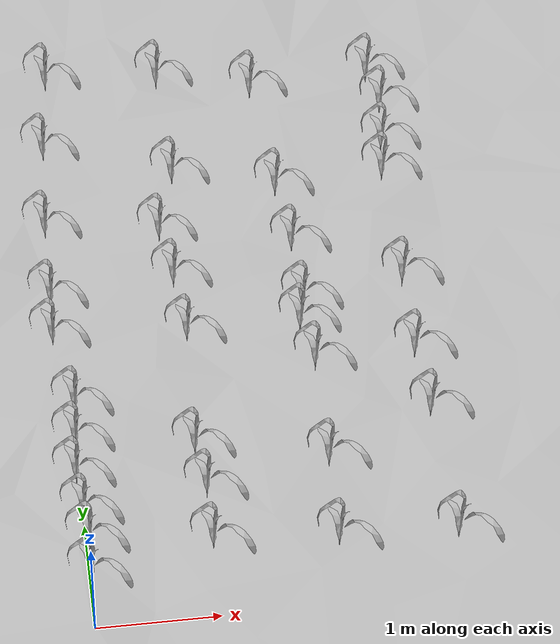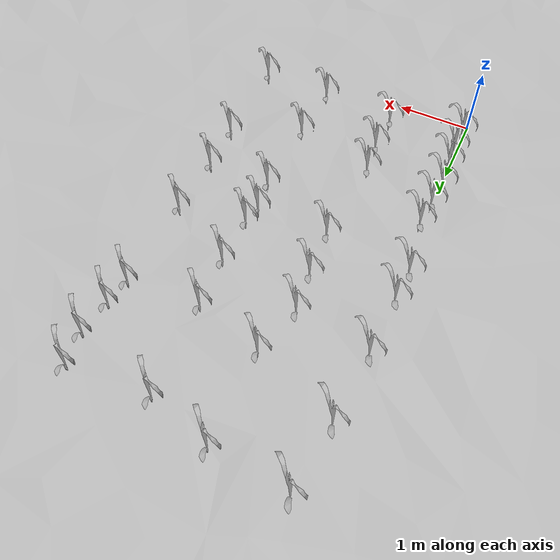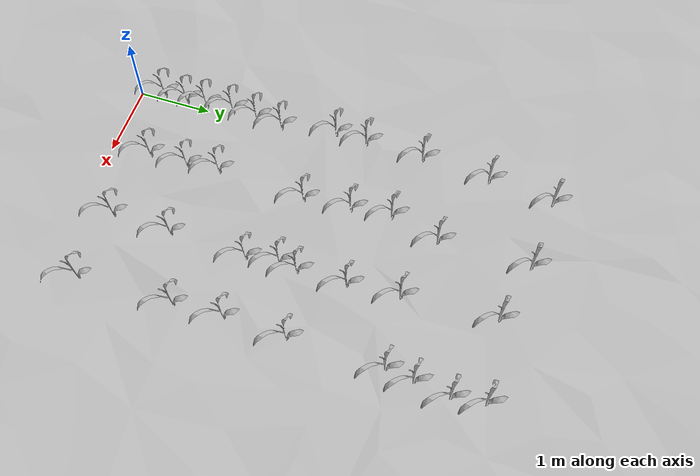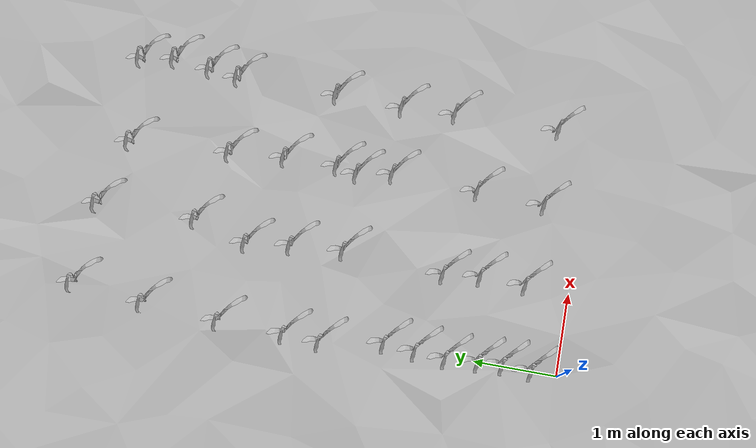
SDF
<sdf version="1.7">
 <world name="default">
  <light name="sun" type="directional">
   <pose>0 0 10 0 -0 0</pose>
   <diffuse>0.8 0.8 0.8 1</diffuse>
   <specular>0.2 0.2 0.2 1</specular>
   <attenuation>
    <range>1000</range>
    <constant>0.9</constant>
    <linear>0.01</linear>
    <quadratic>0.001</quadratic>
   </attenuation>
   <direction>-0.5 0.1 -0.9</direction>
   <spot><inner_angle>0</inner_angle><outer_angle>0</outer_angle><falloff>0</falloff></spot>
  </light>
  <model name="ground_plane">
   <static>1</static>
   <link name="link">
    <collision name="collision">
     <geometry><plane><normal>0 0 1</normal><size>100 100</size></plane></geometry>
     <surface><friction><ode><mu>100</mu><mu2>50</mu2></ode></friction></surface>
    </collision>
    <visual name="visual">
     <cast_shadows>0</cast_shadows>
     <geometry><plane><normal>0 0 1</normal><size>100 100</size></plane></geometry>
     <material>
      <script><uri>file://media/materials/scripts/gazebo.material</uri><name>Gazebo/Grey</name></script>
     </material>
    </visual>
   </link>
  </model>
  <gravity>0 0 -9.8</gravity>
  <magnetic_field>6e-06 2.3e-05 -4.2e-05</magnetic_field>
  <atmosphere type="adiabatic"/>
  <physics type="ode">
   <max_step_size>0.001</max_step_size>
   <real_time_factor>1</real_time_factor>
   <real_time_update_rate>1000</real_time_update_rate>
  </physics>
  <scene><ambient>0.4 0.4 0.4 1</ambient><background>0.7 0.7 0.7 1</background><shadows>1</shadows></scene>
  <audio><device>default</device></audio>
  <spherical_coordinates>
   <surface_model>EARTH_WGS84</surface_model>
   <latitude_deg>0</latitude_deg>
   <longitude_deg>0</longitude_deg>
   <elevation>0</elevation>
   <heading_deg>0</heading_deg>
  </spherical_coordinates>
  <model name="maize_01">
   <static>1</static>
   <pose>0.009623 0.379944 0.05 0 -0 0</pose>
   <link name="maize_01_link">
    <inertial>
     <pose>0 0 0.01 0 -0 0</pose>
     <mass>0.3</mass>
     <inertia>
      <ixx>0.00334167</ixx>
      <ixy>0</ixy>
      <ixz>0</ixz>
      <iyy>0.00334167</iyy>
      <iyz>0</iyz>
      <izz>1.66667e-05</izz>
     </inertia>
     <pose>0 0 0.1 0 -0 0</pose>
    </inertial>
    <collision name="collision">
     <pose>0 0 0.2 0 -0 0</pose>
     <geometry><box><size>0.02 0.02 0.4</size></box></geometry>
     <surface><friction><ode><mu>10</mu><mu2>10</mu2></ode></friction></surface>
    </collision>
    <visual name="visual">
     <geometry>
      <mesh><uri>model://maize_01/meshes/maize_01.dae</uri><scale>0.683166 0.683166 0.683166</scale></mesh>
     </geometry>
    </visual>
   </link>
  </model>
  <model name="maize_01_clone">
   <static>1</static>
   <pose>0.020238 0.71727 0.05 0 -0 0</pose>
   <link name="maize_01_link">
    <inertial>
     <pose>0 0 0.01 0 -0 0</pose>
     <mass>0.3</mass>
     <inertia>
      <ixx>0.00334167</ixx>
      <ixy>0</ixy>
      <ixz>0</ixz>
      <iyy>0.00334167</iyy>
      <iyz>0</iyz>
      <izz>1.66667e-05</izz>
     </inertia>
     <pose>0 0 0.1 0 -0 0</pose>
    </inertial>
    <collision name="collision">
     <pose>0 0 0.2 0 -0 0</pose>
     <geometry><box><size>0.02 0.02 0.4</size></box></geometry>
     <surface><friction><ode><mu>10</mu><mu2>10</mu2></ode></friction></surface>
    </collision>
    <visual name="visual">
     <geometry>
      <mesh><uri>model://maize_01/meshes/maize_01.dae</uri><scale>0.683166 0.683166 0.683166</scale></mesh>
     </geometry>
    </visual>
   </link>
  </model>
  <model name="maize_01_clone_0">
   <static>1</static>
   <pose>0 1 0.05 0 -0 0</pose>
   <link name="maize_01_link">
    <inertial>
     <pose>0 0 0.01 0 -0 0</pose>
     <mass>0.3</mass>
     <inertia>
      <ixx>0.00334167</ixx>
      <ixy>0</ixy>
      <ixz>0</ixz>
      <iyy>0.00334167</iyy>
      <iyz>0</iyz>
      <izz>1.66667e-05</izz>
     </inertia>
     <pose>0 0 0.1 0 -0 0</pose>
    </inertial>
    <collision name="collision">
     <pose>0 0 0.2 0 -0 0</pose>
     <geometry><box><size>0.02 0.02 0.4</size></box></geometry>
     <surface><friction><ode><mu>10</mu><mu2>10</mu2></ode></friction></surface>
    </collision>
    <visual name="visual">
     <geometry>
      <mesh><uri>model://maize_01/meshes/maize_01.dae</uri><scale>0.683166 0.683166 0.683166</scale></mesh>
     </geometry>
    </visual>
   </link>
  </model>
  <model name="maize_01_clone_1">
   <static>1</static>
   <pose>-0.029602 1.37831 0.05 0 -0 0</pose>
   <link name="maize_01_link">
    <inertial>
     <pose>0 0 0.01 0 -0 0</pose>
     <mass>0.3</mass>
     <inertia>
      <ixx>0.00334167</ixx>
      <ixy>0</ixy>
      <ixz>0</ixz>
      <iyy>0.00334167</iyy>
      <iyz>0</iyz>
      <izz>1.66667e-05</izz>
     </inertia>
     <pose>0 0 0.1 0 -0 0</pose>
    </inertial>
    <collision name="collision">
     <pose>0 0 0.2 0 -0 0</pose>
     <geometry><box><size>0.02 0.02 0.4</size></box></geometry>
     <surface><friction><ode><mu>10</mu><mu2>10</mu2></ode></friction></surface>
    </collision>
    <visual name="visual">
     <geometry>
      <mesh><uri>model://maize_01/meshes/maize_01.dae</uri><scale>0.683166 0.683166 0.683166</scale></mesh>
     </geometry>
    </visual>
   </link>
  </model>
  <model name="maize_01_clone_2">
   <static>1</static>
   <pose>-0.006293 1.73544 0.05 0 -0 0</pose>
   <link name="maize_01_link">
    <inertial>
     <pose>0 0 0.01 0 -0 0</pose>
     <mass>0.3</mass>
     <inertia>
      <ixx>0.00334167</ixx>
      <ixy>0</ixy>
      <ixz>0</ixz>
      <iyy>0.00334167</iyy>
      <iyz>0</iyz>
      <izz>1.66667e-05</izz>
     </inertia>
     <pose>0 0 0.1 0 -0 0</pose>
    </inertial>
    <collision name="collision">
     <pose>0 0 0.2 0 -0 0</pose>
     <geometry><box><size>0.02 0.02 0.4</size></box></geometry>
     <surface><friction><ode><mu>10</mu><mu2>10</mu2></ode></friction></surface>
    </collision>
    <visual name="visual">
     <geometry>
      <mesh><uri>model://maize_01/meshes/maize_01.dae</uri><scale>0.683166 0.683166 0.683166</scale></mesh>
     </geometry>
    </visual>
   </link>
  </model>
  <model name="maize_01_clone_3">
   <static>1</static>
   <pose>0.017902 2.10312 0.05 0 -0 0</pose>
   <link name="maize_01_link">
    <inertial>
     <pose>0 0 0.01 0 -0 0</pose>
     <mass>0.3</mass>
     <inertia>
      <ixx>0.00334167</ixx>
      <ixy>0</ixy>
      <ixz>0</ixz>
      <iyy>0.00334167</iyy>
      <iyz>0</iyz>
      <izz>1.66667e-05</izz>
     </inertia>
     <pose>0 0 0.1 0 -0 0</pose>
    </inertial>
    <collision name="collision">
     <pose>0 0 0.2 0 -0 0</pose>
     <geometry><box><size>0.02 0.02 0.4</size></box></geometry>
     <surface><friction><ode><mu>10</mu><mu2>10</mu2></ode></friction></surface>
    </collision>
    <visual name="visual">
     <geometry>
      <mesh><uri>model://maize_01/meshes/maize_01.dae</uri><scale>0.683166 0.683166 0.683166</scale></mesh>
     </geometry>
    </visual>
   </link>
  </model>
  <model name="maize_01_clone_4">
   <static>1</static>
   <pose>-0.105509 2.84699 0.05 0 -0 0</pose>
   <link name="maize_01_link">
    <inertial>
     <pose>0 0 0.01 0 -0 0</pose>
     <mass>0.3</mass>
     <inertia>
      <ixx>0.00334167</ixx>
      <ixy>0</ixy>
      <ixz>0</ixz>
      <iyy>0.00334167</iyy>
      <iyz>0</iyz>
      <izz>1.66667e-05</izz>
     </inertia>
     <pose>0 0 0.1 0 -0 0</pose>
    </inertial>
    <collision name="collision">
     <pose>0 0 0.2 0 -0 0</pose>
     <geometry><box><size>0.02 0.02 0.4</size></box></geometry>
     <surface><friction><ode><mu>10</mu><mu2>10</mu2></ode></friction></surface>
    </collision>
    <visual name="visual">
     <geometry>
      <mesh><uri>model://maize_01/meshes/maize_01.dae</uri><scale>0.683166 0.683166 0.683166</scale></mesh>
     </geometry>
    </visual>
   </link>
  </model>
  <model name="maize_01_clone_5">
   <static>1</static>
   <pose>-0.087991 3.27639 0.05 0 -0 0</pose>
   <link name="maize_01_link">
    <inertial>
     <pose>0 0 0.01 0 -0 0</pose>
     <mass>0.3</mass>
     <inertia>
      <ixx>0.00334167</ixx>
      <ixy>0</ixy>
      <ixz>0</ixz>
      <iyy>0.00334167</iyy>
      <iyz>0</iyz>
      <izz>1.66667e-05</izz>
     </inertia>
     <pose>0 0 0.1 0 -0 0</pose>
    </inertial>
    <collision name="collision">
     <pose>0 0 0.2 0 -0 0</pose>
     <geometry><box><size>0.02 0.02 0.4</size></box></geometry>
     <surface><friction><ode><mu>10</mu><mu2>10</mu2></ode></friction></surface>
    </collision>
    <visual name="visual">
     <geometry>
      <mesh><uri>model://maize_01/meshes/maize_01.dae</uri><scale>0.683166 0.683166 0.683166</scale></mesh>
     </geometry>
    </visual>
   </link>
  </model>
  <model name="maize_01_clone_6">
   <static>1</static>
   <pose>-0.076476 4.06198 0.05 0 -0 0</pose>
   <link name="maize_01_link">
    <inertial>
     <pose>0 0 0.01 0 -0 0</pose>
     <mass>0.3</mass>
     <inertia>
      <ixx>0.00334167</ixx>
      <ixy>0</ixy>
      <ixz>0</ixz>
      <iyy>0.00334167</iyy>
      <iyz>0</iyz>
      <izz>1.66667e-05</izz>
     </inertia>
     <pose>0 0 0.1 0 -0 0</pose>
    </inertial>
    <collision name="collision">
     <pose>0 0 0.2 0 -0 0</pose>
     <geometry><box><size>0.02 0.02 0.4</size></box></geometry>
     <surface><friction><ode><mu>10</mu><mu2>10</mu2></ode></friction></surface>
    </collision>
    <visual name="visual">
     <geometry>
      <mesh><uri>model://maize_01/meshes/maize_01.dae</uri><scale>0.683166 0.683166 0.683166</scale></mesh>
     </geometry>
    </visual>
   </link>
  </model>
  <model name="maize_01_clone_7">
   <static>1</static>
   <pose>-0.02465 4.97306 0.05 0 -0 0</pose>
   <link name="maize_01_link">
    <inertial>
     <pose>0 0 0.01 0 -0 0</pose>
     <mass>0.3</mass>
     <inertia>
      <ixx>0.00334167</ixx>
      <ixy>0</ixy>
      <ixz>0</ixz>
      <iyy>0.00334167</iyy>
      <iyz>0</iyz>
      <izz>1.66667e-05</izz>
     </inertia>
     <pose>0 0 0.1 0 -0 0</pose>
    </inertial>
    <collision name="collision">
     <pose>0 0 0.2 0 -0 0</pose>
     <geometry><box><size>0.02 0.02 0.4</size></box></geometry>
     <surface><friction><ode><mu>10</mu><mu2>10</mu2></ode></friction></surface>
    </collision>
    <visual name="visual">
     <geometry>
      <mesh><uri>model://maize_01/meshes/maize_01.dae</uri><scale>0.683166 0.683166 0.683166</scale></mesh>
     </geometry>
    </visual>
   </link>
  </model>
  <model name="maize_01_clone_8">
   <static>1</static>
   <pose>0.059087 5.83093 0.05 0 -0 0</pose>
   <link name="maize_01_link">
    <inertial>
     <pose>0 0 0.01 0 -0 0</pose>
     <mass>0.3</mass>
     <inertia>
      <ixx>0.00334167</ixx>
      <ixy>0</ixy>
      <ixz>0</ixz>
      <iyy>0.00334167</iyy>
      <iyz>0</iyz>
      <izz>1.66667e-05</izz>
     </inertia>
     <pose>0 0 0.1 0 -0 0</pose>
    </inertial>
    <collision name="collision">
     <pose>0 0 0.2 0 -0 0</pose>
     <geometry><box><size>0.02 0.02 0.4</size></box></geometry>
     <surface><friction><ode><mu>10</mu><mu2>10</mu2></ode></friction></surface>
    </collision>
    <visual name="visual">
     <geometry>
      <mesh><uri>model://maize_01/meshes/maize_01.dae</uri><scale>0.683166 0.683166 0.683166</scale></mesh>
     </geometry>
    </visual>
   </link>
  </model>
  <model name="maize_01_clone_9">
   <static>1</static>
   <pose>0.891386 3.91532 0.05 0 -0 0</pose>
   <link name="maize_01_link">
    <inertial>
     <pose>0 0 0.01 0 -0 0</pose>
     <mass>0.3</mass>
     <inertia>
      <ixx>0.00334167</ixx>
      <ixy>0</ixy>
      <ixz>0</ixz>
      <iyy>0.00334167</iyy>
      <iyz>0</iyz>
      <izz>1.66667e-05</izz>
     </inertia>
     <pose>0 0 0.1 0 -0 0</pose>
    </inertial>
    <collision name="collision">
     <pose>0 0 0.2 0 -0 0</pose>
     <geometry><box><size>0.02 0.02 0.4</size></box></geometry>
     <surface><friction><ode><mu>10</mu><mu2>10</mu2></ode></friction></surface>
    </collision>
    <visual name="visual">
     <geometry>
      <mesh><uri>model://maize_01/meshes/maize_01.dae</uri><scale>0.683166 0.683166 0.683166</scale></mesh>
     </geometry>
    </visual>
   </link>
  </model>
  <model name="maize_01_clone_10">
   <static>1</static>
   <pose>1.01014 2.76157 0.05 0 -0 0</pose>
   <link name="maize_01_link">
    <inertial>
     <pose>0 0 0.01 0 -0 0</pose>
     <mass>0.3</mass>
     <inertia>
      <ixx>0.00334167</ixx>
      <ixy>0</ixy>
      <ixz>0</ixz>
      <iyy>0.00334167</iyy>
      <iyz>0</iyz>
      <izz>1.66667e-05</izz>
     </inertia>
     <pose>0 0 0.1 0 -0 0</pose>
    </inertial>
    <collision name="collision">
     <pose>0 0 0.2 0 -0 0</pose>
     <geometry><box><size>0.02 0.02 0.4</size></box></geometry>
     <surface><friction><ode><mu>10</mu><mu2>10</mu2></ode></friction></surface>
    </collision>
    <visual name="visual">
     <geometry>
      <mesh><uri>model://maize_01/meshes/maize_01.dae</uri><scale>0.683166 0.683166 0.683166</scale></mesh>
     </geometry>
    </visual>
   </link>
  </model>
  <model name="maize_01_clone_11">
   <static>1</static>
   <pose>0.949384 1.56095 0.05 0 -0 0</pose>
   <link name="maize_01_link">
    <inertial>
     <pose>0 0 0.01 0 -0 0</pose>
     <mass>0.3</mass>
     <inertia>
      <ixx>0.00334167</ixx>
      <ixy>0</ixy>
      <ixz>0</ixz>
      <iyy>0.00334167</iyy>
      <iyz>0</iyz>
      <izz>1.66667e-05</izz>
     </inertia>
     <pose>0 0 0.1 0 -0 0</pose>
    </inertial>
    <collision name="collision">
     <pose>0 0 0.2 0 -0 0</pose>
     <geometry><box><size>0.02 0.02 0.4</size></box></geometry>
     <surface><friction><ode><mu>10</mu><mu2>10</mu2></ode></friction></surface>
    </collision>
    <visual name="visual">
     <geometry>
      <mesh><uri>model://maize_01/meshes/maize_01.dae</uri><scale>0.683166 0.683166 0.683166</scale></mesh>
     </geometry>
    </visual>
   </link>
  </model>
  <model name="maize_01_clone_12">
   <static>1</static>
   <pose>0.99427 0.596021 0.05 0 -0 0</pose>
   <link name="maize_01_link">
    <inertial>
     <pose>0 0 0.01 0 -0 0</pose>
     <mass>0.3</mass>
     <inertia>
      <ixx>0.00334167</ixx>
      <ixy>0</ixy>
      <ixz>0</ixz>
      <iyy>0.00334167</iyy>
      <iyz>0</iyz>
      <izz>1.66667e-05</izz>
     </inertia>
     <pose>0 0 0.1 0 -0 0</pose>
    </inertial>
    <collision name="collision">
     <pose>0 0 0.2 0 -0 0</pose>
     <geometry><box><size>0.02 0.02 0.4</size></box></geometry>
     <surface><friction><ode><mu>10</mu><mu2>10</mu2></ode></friction></surface>
    </collision>
    <visual name="visual">
     <geometry>
      <mesh><uri>model://maize_01/meshes/maize_01.dae</uri><scale>0.683166 0.683166 0.683166</scale></mesh>
     </geometry>
    </visual>
   </link>
  </model>
  <model name="maize_01_clone_13">
   <static>1</static>
   <pose>1.00002 1.12762 0.05 0 -0 0</pose>
   <link name="maize_01_link">
    <inertial>
     <pose>0 0 0.01 0 -0 0</pose>
     <mass>0.3</mass>
     <inertia>
      <ixx>0.00334167</ixx>
      <ixy>0</ixy>
      <ixz>0</ixz>
      <iyy>0.00334167</iyy>
      <iyz>0</iyz>
      <izz>1.66667e-05</izz>
     </inertia>
     <pose>0 0 0.1 0 -0 0</pose>
    </inertial>
    <collision name="collision">
     <pose>0 0 0.2 0 -0 0</pose>
     <geometry><box><size>0.02 0.02 0.4</size></box></geometry>
     <surface><friction><ode><mu>10</mu><mu2>10</mu2></ode></friction></surface>
    </collision>
    <visual name="visual">
     <geometry>
      <mesh><uri>model://maize_01/meshes/maize_01.dae</uri><scale>0.683166 0.683166 0.683166</scale></mesh>
     </geometry>
    </visual>
   </link>
  </model>
  <model name="maize_01_clone_14">
   <static>1</static>
   <pose>0.960494 3.38577 0.05 0 -0 0</pose>
   <link name="maize_01_link">
    <inertial>
     <pose>0 0 0.01 0 -0 0</pose>
     <mass>0.3</mass>
     <inertia>
      <ixx>0.00334167</ixx>
      <ixy>0</ixy>
      <ixz>0</ixz>
      <iyy>0.00334167</iyy>
      <iyz>0</iyz>
      <izz>1.66667e-05</izz>
     </inertia>
     <pose>0 0 0.1 0 -0 0</pose>
    </inertial>
    <collision name="collision">
     <pose>0 0 0.2 0 -0 0</pose>
     <geometry><box><size>0.02 0.02 0.4</size></box></geometry>
     <surface><friction><ode><mu>10</mu><mu2>10</mu2></ode></friction></surface>
    </collision>
    <visual name="visual">
     <geometry>
      <mesh><uri>model://maize_01/meshes/maize_01.dae</uri><scale>0.683166 0.683166 0.683166</scale></mesh>
     </geometry>
    </visual>
   </link>
  </model>
  <model name="maize_01_clone_15">
   <static>1</static>
   <pose>1.06529 4.5625 0.05 0 -0 0</pose>
   <link name="maize_01_link">
    <inertial>
     <pose>0 0 0.01 0 -0 0</pose>
     <mass>0.3</mass>
     <inertia>
      <ixx>0.00334167</ixx>
      <ixy>0</ixy>
      <ixz>0</ixz>
      <iyy>0.00334167</iyy>
      <iyz>0</iyz>
      <izz>1.66667e-05</izz>
     </inertia>
     <pose>0 0 0.1 0 -0 0</pose>
    </inertial>
    <collision name="collision">
     <pose>0 0 0.2 0 -0 0</pose>
     <geometry><box><size>0.02 0.02 0.4</size></box></geometry>
     <surface><friction><ode><mu>10</mu><mu2>10</mu2></ode></friction></surface>
    </collision>
    <visual name="visual">
     <geometry>
      <mesh><uri>model://maize_01/meshes/maize_01.dae</uri><scale>0.683166 0.683166 0.683166</scale></mesh>
     </geometry>
    </visual>
   </link>
  </model>
  <model name="maize_01_clone_16">
   <static>1</static>
   <pose>1.04474 5.75421 0.05 0 -0 0</pose>
   <link name="maize_01_link">
    <inertial>
     <pose>0 0 0.01 0 -0 0</pose>
     <mass>0.3</mass>
     <inertia>
      <ixx>0.00334167</ixx>
      <ixy>0</ixy>
      <ixz>0</ixz>
      <iyy>0.00334167</iyy>
      <iyz>0</iyz>
      <izz>1.66667e-05</izz>
     </inertia>
     <pose>0 0 0.1 0 -0 0</pose>
    </inertial>
    <collision name="collision">
     <pose>0 0 0.2 0 -0 0</pose>
     <geometry><box><size>0.02 0.02 0.4</size></box></geometry>
     <surface><friction><ode><mu>10</mu><mu2>10</mu2></ode></friction></surface>
    </collision>
    <visual name="visual">
     <geometry>
      <mesh><uri>model://maize_01/meshes/maize_01.dae</uri><scale>0.683166 0.683166 0.683166</scale></mesh>
     </geometry>
    </visual>
   </link>
  </model>
  <model name="maize_01_clone_17">
   <static>1</static>
   <pose>2.01485 3.01722 0.05 0 -0 0</pose>
   <link name="maize_01_link">
    <inertial>
     <pose>0 0 0.01 0 -0 0</pose>
     <mass>0.3</mass>
     <inertia>
      <ixx>0.00334167</ixx>
      <ixy>0</ixy>
      <ixz>0</ixz>
      <iyy>0.00334167</iyy>
      <iyz>0</iyz>
      <izz>1.66667e-05</izz>
     </inertia>
     <pose>0 0 0.1 0 -0 0</pose>
    </inertial>
    <collision name="collision">
     <pose>0 0 0.2 0 -0 0</pose>
     <geometry><box><size>0.02 0.02 0.4</size></box></geometry>
     <surface><friction><ode><mu>10</mu><mu2>10</mu2></ode></friction></surface>
    </collision>
    <visual name="visual">
     <geometry>
      <mesh><uri>model://maize_01/meshes/maize_01.dae</uri><scale>0.683166 0.683166 0.683166</scale></mesh>
     </geometry>
    </visual>
   </link>
  </model>
  <model name="maize_01_clone_18">
   <static>1</static>
   <pose>1.9416 4.3239 0.05 0 -0 0</pose>
   <link name="maize_01_link">
    <inertial>
     <pose>0 0 0.01 0 -0 0</pose>
     <mass>0.3</mass>
     <inertia>
      <ixx>0.00334167</ixx>
      <ixy>0</ixy>
      <ixz>0</ixz>
      <iyy>0.00334167</iyy>
      <iyz>0</iyz>
      <izz>1.66667e-05</izz>
     </inertia>
     <pose>0 0 0.1 0 -0 0</pose>
    </inertial>
    <collision name="collision">
     <pose>0 0 0.2 0 -0 0</pose>
     <geometry><box><size>0.02 0.02 0.4</size></box></geometry>
     <surface><friction><ode><mu>10</mu><mu2>10</mu2></ode></friction></surface>
    </collision>
    <visual name="visual">
     <geometry>
      <mesh><uri>model://maize_01/meshes/maize_01.dae</uri><scale>0.683166 0.683166 0.683166</scale></mesh>
     </geometry>
    </visual>
   </link>
  </model>
  <model name="maize_01_clone_19">
   <static>1</static>
   <pose>1.85945 5.52888 0.05 0 -0 0</pose>
   <link name="maize_01_link">
    <inertial>
     <pose>0 0 0.01 0 -0 0</pose>
     <mass>0.3</mass>
     <inertia>
      <ixx>0.00334167</ixx>
      <ixy>0</ixy>
      <ixz>0</ixz>
      <iyy>0.00334167</iyy>
      <iyz>0</iyz>
      <izz>1.66667e-05</izz>
     </inertia>
     <pose>0 0 0.1 0 -0 0</pose>
    </inertial>
    <collision name="collision">
     <pose>0 0 0.2 0 -0 0</pose>
     <geometry><box><size>0.02 0.02 0.4</size></box></geometry>
     <surface><friction><ode><mu>10</mu><mu2>10</mu2></ode></friction></surface>
    </collision>
    <visual name="visual">
     <geometry>
      <mesh><uri>model://maize_01/meshes/maize_01.dae</uri><scale>0.683166 0.683166 0.683166</scale></mesh>
     </geometry>
    </visual>
   </link>
  </model>
  <model name="maize_01_clone_20">
   <static>1</static>
   <pose>2.00057 3.65665 0.05 0 -0 0</pose>
   <link name="maize_01_link">
    <inertial>
     <pose>0 0 0.01 0 -0 0</pose>
     <mass>0.3</mass>
     <inertia>
      <ixx>0.00334167</ixx>
      <ixy>0</ixy>
      <ixz>0</ixz>
      <iyy>0.00334167</iyy>
      <iyz>0</iyz>
      <izz>1.66667e-05</izz>
     </inertia>
     <pose>0 0 0.1 0 -0 0</pose>
    </inertial>
    <collision name="collision">
     <pose>0 0 0.2 0 -0 0</pose>
     <geometry><box><size>0.02 0.02 0.4</size></box></geometry>
     <surface><friction><ode><mu>10</mu><mu2>10</mu2></ode></friction></surface>
    </collision>
    <visual name="visual">
     <geometry>
      <mesh><uri>model://maize_01/meshes/maize_01.dae</uri><scale>0.683166 0.683166 0.683166</scale></mesh>
     </geometry>
    </visual>
   </link>
  </model>
  <model name="maize_01_clone_21">
   <static>1</static>
   <pose>1.9633 2.77047 0.05 0 -0 0</pose>
   <link name="maize_01_link">
    <inertial>
     <pose>0 0 0.01 0 -0 0</pose>
     <mass>0.3</mass>
     <inertia>
      <ixx>0.00334167</ixx>
      <ixy>0</ixy>
      <ixz>0</ixz>
      <iyy>0.00334167</iyy>
      <iyz>0</iyz>
      <izz>1.66667e-05</izz>
     </inertia>
     <pose>0 0 0.1 0 -0 0</pose>
    </inertial>
    <collision name="collision">
     <pose>0 0 0.2 0 -0 0</pose>
     <geometry><box><size>0.02 0.02 0.4</size></box></geometry>
     <surface><friction><ode><mu>10</mu><mu2>10</mu2></ode></friction></surface>
    </collision>
    <visual name="visual">
     <geometry>
      <mesh><uri>model://maize_01/meshes/maize_01.dae</uri><scale>0.683166 0.683166 0.683166</scale></mesh>
     </geometry>
    </visual>
   </link>
  </model>
  <model name="maize_01_clone_22">
   <static>1</static>
   <pose>2.03582 2.34849 0.05 0 -0 0</pose>
   <link name="maize_01_link">
    <inertial>
     <pose>0 0 0.01 0 -0 0</pose>
     <mass>0.3</mass>
     <inertia>
      <ixx>0.00334167</ixx>
      <ixy>0</ixy>
      <ixz>0</ixz>
      <iyy>0.00334167</iyy>
      <iyz>0</iyz>
      <izz>1.66667e-05</izz>
     </inertia>
     <pose>0 0 0.1 0 -0 0</pose>
    </inertial>
    <collision name="collision">
     <pose>0 0 0.2 0 -0 0</pose>
     <geometry><box><size>0.02 0.02 0.4</size></box></geometry>
     <surface><friction><ode><mu>10</mu><mu2>10</mu2></ode></friction></surface>
    </collision>
    <visual name="visual">
     <geometry>
      <mesh><uri>model://maize_01/meshes/maize_01.dae</uri><scale>0.683166 0.683166 0.683166</scale></mesh>
     </geometry>
    </visual>
   </link>
  </model>
  <model name="maize_01_clone_23">
   <static>1</static>
   <pose>2.01439 1.32225 0.05 0 -0 0</pose>
   <link name="maize_01_link">
    <inertial>
     <pose>0 0 0.01 0 -0 0</pose>
     <mass>0.3</mass>
     <inertia>
      <ixx>0.00334167</ixx>
      <ixy>0</ixy>
      <ixz>0</ixz>
      <iyy>0.00334167</iyy>
      <iyz>0</iyz>
      <izz>1.66667e-05</izz>
     </inertia>
     <pose>0 0 0.1 0 -0 0</pose>
    </inertial>
    <collision name="collision">
     <pose>0 0 0.2 0 -0 0</pose>
     <geometry><box><size>0.02 0.02 0.4</size></box></geometry>
     <surface><friction><ode><mu>10</mu><mu2>10</mu2></ode></friction></surface>
    </collision>
    <visual name="visual">
     <geometry>
      <mesh><uri>model://maize_01/meshes/maize_01.dae</uri><scale>0.683166 0.683166 0.683166</scale></mesh>
     </geometry>
    </visual>
   </link>
  </model>
  <model name="maize_01_clone_24">
   <static>1</static>
   <pose>1.99018 0.518616 0.05 0 -0 0</pose>
   <link name="maize_01_link">
    <inertial>
     <pose>0 0 0.01 0 -0 0</pose>
     <mass>0.3</mass>
     <inertia>
      <ixx>0.00334167</ixx>
      <ixy>0</ixy>
      <ixz>0</ixz>
      <iyy>0.00334167</iyy>
      <iyz>0</iyz>
      <izz>1.66667e-05</izz>
     </inertia>
     <pose>0 0 0.1 0 -0 0</pose>
    </inertial>
    <collision name="collision">
     <pose>0 0 0.2 0 -0 0</pose>
     <geometry><box><size>0.02 0.02 0.4</size></box></geometry>
     <surface><friction><ode><mu>10</mu><mu2>10</mu2></ode></friction></surface>
    </collision>
    <visual name="visual">
     <geometry>
      <mesh><uri>model://maize_01/meshes/maize_01.dae</uri><scale>0.683166 0.683166 0.683166</scale></mesh>
     </geometry>
    </visual>
   </link>
  </model>
  <model name="maize_01_clone_25">
   <static>1</static>
   <pose>2.90739 1.73386 0.05 0 -0 0</pose>
   <link name="maize_01_link">
    <inertial>
     <pose>0 0 0.01 0 -0 0</pose>
     <mass>0.3</mass>
     <inertia>
      <ixx>0.00334167</ixx>
      <ixy>0</ixy>
      <ixz>0</ixz>
      <iyy>0.00334167</iyy>
      <iyz>0</iyz>
      <izz>1.66667e-05</izz>
     </inertia>
     <pose>0 0 0.1 0 -0 0</pose>
    </inertial>
    <collision name="collision">
     <pose>0 0 0.2 0 -0 0</pose>
     <geometry><box><size>0.02 0.02 0.4</size></box></geometry>
     <surface><friction><ode><mu>10</mu><mu2>10</mu2></ode></friction></surface>
    </collision>
    <visual name="visual">
     <geometry>
      <mesh><uri>model://maize_01/meshes/maize_01.dae</uri><scale>0.683166 0.683166 0.683166</scale></mesh>
     </geometry>
    </visual>
   </link>
  </model>
  <model name="maize_01_clone_26">
   <static>1</static>
   <pose>2.8735 2.37797 0.05 0 -0 0</pose>
   <link name="maize_01_link">
    <inertial>
     <pose>0 0 0.01 0 -0 0</pose>
     <mass>0.3</mass>
     <inertia>
      <ixx>0.00334167</ixx>
      <ixy>0</ixy>
      <ixz>0</ixz>
      <iyy>0.00334167</iyy>
      <iyz>0</iyz>
      <izz>1.66667e-05</izz>
     </inertia>
     <pose>0 0 0.1 0 -0 0</pose>
    </inertial>
    <collision name="collision">
     <pose>0 0 0.2 0 -0 0</pose>
     <geometry><box><size>0.02 0.02 0.4</size></box></geometry>
     <surface><friction><ode><mu>10</mu><mu2>10</mu2></ode></friction></surface>
    </collision>
    <visual name="visual">
     <geometry>
      <mesh><uri>model://maize_01/meshes/maize_01.dae</uri><scale>0.683166 0.683166 0.683166</scale></mesh>
     </geometry>
    </visual>
   </link>
  </model>
  <model name="maize_01_clone_27">
   <static>1</static>
   <pose>2.88695 3.18604 0.05 0 -0 0</pose>
   <link name="maize_01_link">
    <inertial>
     <pose>0 0 0.01 0 -0 0</pose>
     <mass>0.3</mass>
     <inertia>
      <ixx>0.00334167</ixx>
      <ixy>0</ixy>
      <ixz>0</ixz>
      <iyy>0.00334167</iyy>
      <iyz>0</iyz>
      <izz>1.66667e-05</izz>
     </inertia>
     <pose>0 0 0.1 0 -0 0</pose>
    </inertial>
    <collision name="collision">
     <pose>0 0 0.2 0 -0 0</pose>
     <geometry><box><size>0.02 0.02 0.4</size></box></geometry>
     <surface><friction><ode><mu>10</mu><mu2>10</mu2></ode></friction></surface>
    </collision>
    <visual name="visual">
     <geometry>
      <mesh><uri>model://maize_01/meshes/maize_01.dae</uri><scale>0.683166 0.683166 0.683166</scale></mesh>
     </geometry>
    </visual>
   </link>
  </model>
  <model name="maize_01_clone_28">
   <static>1</static>
   <pose>2.91487 5.61782 0.05 0 -0 0</pose>
   <link name="maize_01_link">
    <inertial>
     <pose>0 0 0.01 0 -0 0</pose>
     <mass>0.3</mass>
     <inertia>
      <ixx>0.00334167</ixx>
      <ixy>0</ixy>
      <ixz>0</ixz>
      <iyy>0.00334167</iyy>
      <iyz>0</iyz>
      <izz>1.66667e-05</izz>
     </inertia>
     <pose>0 0 0.1 0 -0 0</pose>
    </inertial>
    <collision name="collision">
     <pose>0 0 0.2 0 -0 0</pose>
     <geometry><box><size>0.02 0.02 0.4</size></box></geometry>
     <surface><friction><ode><mu>10</mu><mu2>10</mu2></ode></friction></surface>
    </collision>
    <visual name="visual">
     <geometry>
      <mesh><uri>model://maize_01/meshes/maize_01.dae</uri><scale>0.683166 0.683166 0.683166</scale></mesh>
     </geometry>
    </visual>
   </link>
  </model>
  <model name="maize_01_clone_29">
   <static>1</static>
   <pose>2.98093 5.20781 0.05 0 -0 0</pose>
   <link name="maize_01_link">
    <inertial>
     <pose>0 0 0.01 0 -0 0</pose>
     <mass>0.3</mass>
     <inertia>
      <ixx>0.00334167</ixx>
      <ixy>0</ixy>
      <ixz>0</ixz>
      <iyy>0.00334167</iyy>
      <iyz>0</iyz>
      <izz>1.66667e-05</izz>
     </inertia>
     <pose>0 0 0.1 0 -0 0</pose>
    </inertial>
    <collision name="collision">
     <pose>0 0 0.2 0 -0 0</pose>
     <geometry><box><size>0.02 0.02 0.4</size></box></geometry>
     <surface><friction><ode><mu>10</mu><mu2>10</mu2></ode></friction></surface>
    </collision>
    <visual name="visual">
     <geometry>
      <mesh><uri>model://maize_01/meshes/maize_01.dae</uri><scale>0.683166 0.683166 0.683166</scale></mesh>
     </geometry>
    </visual>
   </link>
  </model>
  <model name="maize_01_clone_30">
   <static>1</static>
   <pose>2.93017 4.75908 0.05 0 -0 0</pose>
   <link name="maize_01_link">
    <inertial>
     <pose>0 0 0.01 0 -0 0</pose>
     <mass>0.3</mass>
     <inertia>
      <ixx>0.00334167</ixx>
      <ixy>0</ixy>
      <ixz>0</ixz>
      <iyy>0.00334167</iyy>
      <iyz>0</iyz>
      <izz>1.66667e-05</izz>
     </inertia>
     <pose>0 0 0.1 0 -0 0</pose>
    </inertial>
    <collision name="collision">
     <pose>0 0 0.2 0 -0 0</pose>
     <geometry><box><size>0.02 0.02 0.4</size></box></geometry>
     <surface><friction><ode><mu>10</mu><mu2>10</mu2></ode></friction></surface>
    </collision>
    <visual name="visual">
     <geometry>
      <mesh><uri>model://maize_01/meshes/maize_01.dae</uri><scale>0.683166 0.683166 0.683166</scale></mesh>
     </geometry>
    </visual>
   </link>
  </model>
  <model name="maize_01_clone_31">
   <static>1</static>
   <pose>2.88671 4.40457 0.05 0 -0 0</pose>
   <link name="maize_01_link">
    <inertial>
     <pose>0 0 0.01 0 -0 0</pose>
     <mass>0.3</mass>
     <inertia>
      <ixx>0.00334167</ixx>
      <ixy>0</ixy>
      <ixz>0</ixz>
      <iyy>0.00334167</iyy>
      <iyz>0</iyz>
      <izz>1.66667e-05</izz>
     </inertia>
     <pose>0 0 0.1 0 -0 0</pose>
    </inertial>
    <collision name="collision">
     <pose>0 0 0.2 0 -0 0</pose>
     <geometry><box><size>0.02 0.02 0.4</size></box></geometry>
     <surface><friction><ode><mu>10</mu><mu2>10</mu2></ode></friction></surface>
    </collision>
    <visual name="visual">
     <geometry>
      <mesh><uri>model://maize_01/meshes/maize_01.dae</uri><scale>0.683166 0.683166 0.683166</scale></mesh>
     </geometry>
    </visual>
   </link>
  </model>
  <model name="maize_01_clone_32">
   <static>1</static>
   <pose>2.94094 0.481713 0.05 0 -0 0</pose>
   <link name="maize_01_link">
    <inertial>
     <pose>0 0 0.01 0 -0 0</pose>
     <mass>0.3</mass>
     <inertia>
      <ixx>0.00334167</ixx>
      <ixy>0</ixy>
      <ixz>0</ixz>
      <iyy>0.00334167</iyy>
      <iyz>0</iyz>
      <izz>1.66667e-05</izz>
     </inertia>
     <pose>0 0 0.1 0 -0 0</pose>
    </inertial>
    <collision name="collision">
     <pose>0 0 0.2 0 -0 0</pose>
     <geometry><box><size>0.02 0.02 0.4</size></box></geometry>
     <surface><friction><ode><mu>10</mu><mu2>10</mu2></ode></friction></surface>
    </collision>
    <visual name="visual">
     <geometry>
      <mesh><uri>model://maize_01/meshes/maize_01.dae</uri><scale>0.683166 0.683166 0.683166</scale></mesh>
     </geometry>
    </visual>
   </link>
  </model>
  <model name="custom_terrain">
   <static>1</static>
   <link name="link">
    <collision name="collision">
     <geometry><mesh><uri>model://custom_terrain/meshes/terrain.stl</uri></mesh></geometry>
    </collision>
    <visual name="visual">
     <geometry><mesh><uri>model://custom_terrain/meshes/terrain.stl</uri></mesh></geometry>
     <material>
      <script>
       <uri>model://custom_terrain/materials/scripts</uri>
       <uri>model://custom_terrain/materials/textures</uri>
       <name>custom_terrain/terrain</name>
      </script>
     </material>
    </visual>
   </link>
   <pose>-0.345685 0.217044 0 0 -0 0</pose>
  </model>
 </world>
</sdf>
